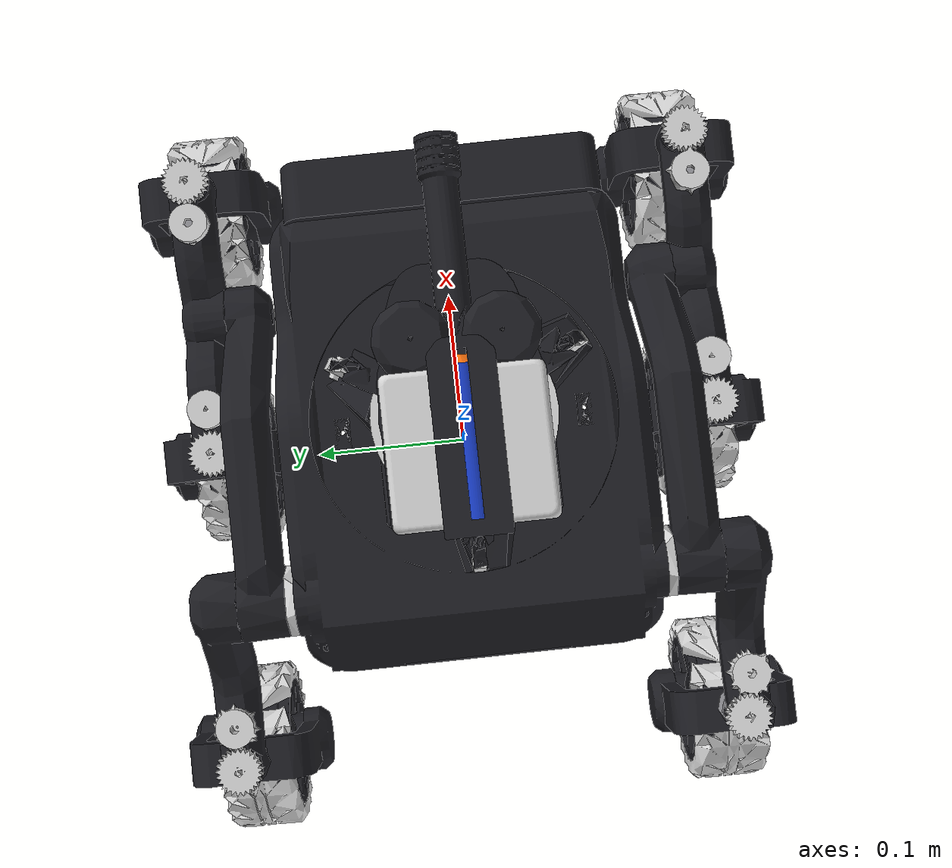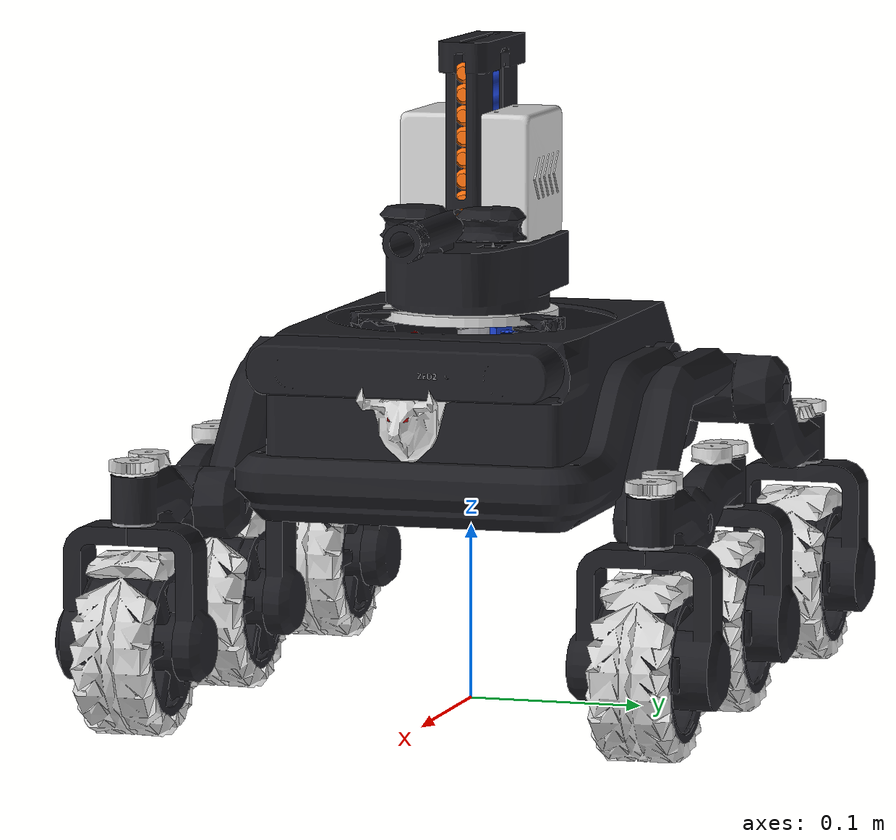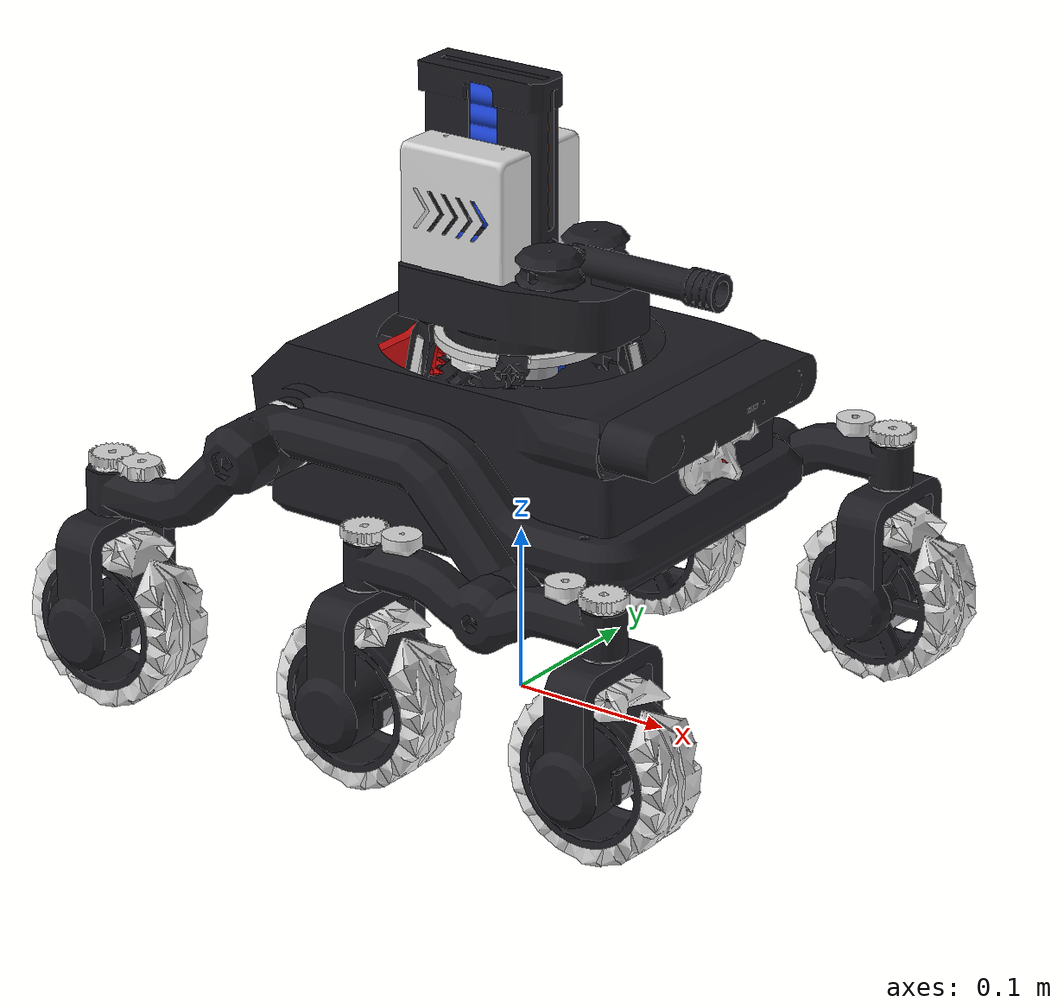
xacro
<?xml version="1.0"?>
<robot name="defender" xmlns:xacro="http://www.ros.org/wiki/xacro">

  <xacro:include filename="defender_generated.xacro"/>

  <!-- Masses in kg. Guesses until you weigh the real parts - then fix them here. -->
  <xacro:property name="base_mass" value="1.20"/>
  <xacro:property name="rocker_mass" value="0.12"/>
  <xacro:property name="bogie_mass" value="0.08"/>
  <xacro:property name="steer_mass" value="0.06"/>
  <xacro:property name="wheel_mass" value="0.05"/>
  <xacro:property name="servo_arm_mass" value="0.01"/>
  <xacro:property name="platform_mass" value="0.08"/>
  <xacro:property name="turret_mass" value="0.30"/>
  <xacro:property name="flywheel_mass" value="0.015"/>
  <xacro:property name="camera_mass" value="0.166"/>  <!-- ZED 2 datasheet -->

  <xacro:property name="wheel_radius" value="0.0517"/>
  <xacro:property name="wheel_width" value="0.045"/>

  <!-- A link whose look and inertia come from the generated file. -->
  <xacro:macro name="cad_link" params="name mass">
    <link name="${name}">
      <xacro:call macro="visuals_${name}"/>
      <xacro:call macro="inertia_${name}" mass="${mass}"/>
    </link>
  </xacro:macro>

  <!-- Chassis                                                        -->
  <link name="base_footprint"/>

  <joint name="base_footprint_joint" type="fixed">
    <parent link="base_footprint"/>
    <child link="base_link"/>
    <origin xyz="0 0 ${-base_footprint_z}" rpy="0 0 0"/>
  </joint>

  <link name="base_link">
    <xacro:visuals_base_link/>
    <xacro:inertia_base_link mass="${base_mass}"/>
    <collision>
      <origin xyz="0 0 -0.013"/>
      <geometry><box size="0.27 0.19 0.10"/></geometry>
    </collision>
  </link>

  <!-- Rocker-bogie suspension, one side at a time                    -->
  <xacro:macro name="wheel_pod" params="pod side carrier steer_xyz wheel_xyz">
    <xacro:cad_link name="${pod}_${side}_steer" mass="${steer_mass}"/>
    <joint name="${pod}_${side}_steer_joint" type="revolute">
      <parent link="${carrier}"/>
      <child link="${pod}_${side}_steer"/>
      <origin xyz="${steer_xyz}"/>
      <axis xyz="0 0 1"/>
      <limit lower="${-pi/2}" upper="${pi/2}" effort="1.0" velocity="3.0"/>
    </joint>

    <link name="${pod}_${side}_wheel">
      <xacro:call macro="visuals_${pod}_${side}_wheel"/>
      <xacro:call macro="inertia_${pod}_${side}_wheel" mass="${wheel_mass}"/>
      <collision>
        <origin rpy="${pi/2} 0 0"/>
        <geometry><cylinder radius="${wheel_radius}" length="${wheel_width}"/></geometry>
      </collision>
    </link>
    <joint name="${pod}_${side}_wheel_joint" type="continuous">
      <parent link="${pod}_${side}_steer"/>
      <child link="${pod}_${side}_wheel"/>
      <origin xyz="${wheel_xyz}"/>
      <axis xyz="0 1 0"/>
      <limit effort="1.0" velocity="20.0"/>
    </joint>
  </xacro:macro>

  <!-- The *_xyz parameters are the measured positions from defender_generated.xacro. -->
  <xacro:macro name="suspension_side"
               params="side rocker_xyz bogie_xyz front_steer_xyz front_wheel_xyz
                       middle_steer_xyz middle_wheel_xyz rear_steer_xyz rear_wheel_xyz">
    <xacro:cad_link name="${side}_rocker" mass="${rocker_mass}"/>
    <joint name="${side}_rocker_joint" type="revolute">
      <parent link="base_link"/>
      <child link="${side}_rocker"/>
      <origin xyz="${rocker_xyz}"/>
      <axis xyz="0 1 0"/>
      <limit lower="-0.5" upper="0.5" effort="10.0" velocity="2.0"/>
      <!-- The differential forces the right rocker to do the opposite of the left. -->
      <xacro:if value="${side == 'right'}">
        <mimic joint="left_rocker_joint" multiplier="-1"/>
      </xacro:if>
    </joint>

    <xacro:cad_link name="${side}_bogie" mass="${bogie_mass}"/>
    <joint name="${side}_bogie_joint" type="revolute">
      <parent link="${side}_rocker"/>
      <child link="${side}_bogie"/>
      <origin xyz="${bogie_xyz}"/>
      <axis xyz="0 1 0"/>
      <limit lower="-0.6" upper="0.6" effort="10.0" velocity="2.0"/>
    </joint>

    <!-- Front and middle wheels hang from the bogie, the rear one from the rocker. -->
    <xacro:wheel_pod pod="front" side="${side}" carrier="${side}_bogie"
                     steer_xyz="${front_steer_xyz}" wheel_xyz="${front_wheel_xyz}"/>
    <xacro:wheel_pod pod="middle" side="${side}" carrier="${side}_bogie"
                     steer_xyz="${middle_steer_xyz}" wheel_xyz="${middle_wheel_xyz}"/>
    <xacro:wheel_pod pod="rear" side="${side}" carrier="${side}_rocker"
                     steer_xyz="${rear_steer_xyz}" wheel_xyz="${rear_wheel_xyz}"/>
  </xacro:macro>

  <xacro:suspension_side side="left"
      rocker_xyz="${left_rocker_origin}" bogie_xyz="${left_bogie_origin}"
      front_steer_xyz="${front_left_steer_origin}" front_wheel_xyz="${front_left_wheel_origin}"
      middle_steer_xyz="${middle_left_steer_origin}" middle_wheel_xyz="${middle_left_wheel_origin}"
      rear_steer_xyz="${rear_left_steer_origin}" rear_wheel_xyz="${rear_left_wheel_origin}"/>
  <xacro:suspension_side side="right"
      rocker_xyz="${right_rocker_origin}" bogie_xyz="${right_bogie_origin}"
      front_steer_xyz="${front_right_steer_origin}" front_wheel_xyz="${front_right_wheel_origin}"
      middle_steer_xyz="${middle_right_steer_origin}" middle_wheel_xyz="${middle_right_wheel_origin}"
      rear_steer_xyz="${rear_right_steer_origin}" rear_wheel_xyz="${rear_right_wheel_origin}"/>

  <xacro:cad_link name="differential" mass="0.02"/>
  <joint name="differential_joint" type="revolute">
    <parent link="base_link"/>
    <child link="differential"/>
    <origin xyz="${differential_origin}"/>
    <axis xyz="1 0 0"/>
    <limit lower="-0.2" upper="0.2" effort="10.0" velocity="2.0"/>
    <mimic joint="left_rocker_joint" multiplier="${differential_ratio}"/>
  </joint>

  <!-- Self-levelling platform                                        -->
  <!-- The real platform is a closed loop: 3 servos push 3 rods that  -->
  <!-- hold the plate. URDF can only describe trees, so the plate     -->
  <!-- gets two "virtual" joints (roll, pitch) and the servo arms are -->
  <!-- separate joints. Working out servo angles from roll and pitch  -->
  <!-- is inverse kinematics - that is a later lesson.                -->
  <xacro:macro name="platform_servo" params="where xyz axis">
    <xacro:cad_link name="platform_servo_${where}" mass="${servo_arm_mass}"/>
    <joint name="platform_servo_${where}_joint" type="revolute">
      <parent link="base_link"/>
      <child link="platform_servo_${where}"/>
      <origin xyz="${xyz}"/>
      <axis xyz="${axis}"/>
      <limit lower="${-pi/2}" upper="${pi/2}" effort="0.2" velocity="6.0"/>
    </joint>
  </xacro:macro>

  <xacro:platform_servo where="front_left"
      xyz="${platform_servo_front_left_origin}" axis="${platform_servo_front_left_axis}"/>
  <xacro:platform_servo where="front_right"
      xyz="${platform_servo_front_right_origin}" axis="${platform_servo_front_right_axis}"/>
  <xacro:platform_servo where="rear"
      xyz="${platform_servo_rear_origin}" axis="${platform_servo_rear_axis}"/>

  <link name="platform_roll">
    <inertial>
      <mass value="0.001"/>
      <inertia ixx="1e-7" ixy="0" ixz="0" iyy="1e-7" iyz="0" izz="1e-7"/>
    </inertial>
  </link>
  <joint name="platform_roll_joint" type="revolute">
    <parent link="base_link"/>
    <child link="platform_roll"/>
    <origin xyz="${platform_roll_origin}"/>
    <axis xyz="1 0 0"/>
    <limit lower="-0.26" upper="0.26" effort="2.0" velocity="3.0"/>
  </joint>

  <xacro:cad_link name="platform" mass="${platform_mass}"/>
  <joint name="platform_pitch_joint" type="revolute">
    <parent link="platform_roll"/>
    <child link="platform"/>
    <origin xyz="${platform_origin}"/>
    <axis xyz="0 1 0"/>
    <limit lower="-0.26" upper="0.26" effort="2.0" velocity="3.0"/>
  </joint>

  <!-- Turret and shooter                                             -->
  <link name="turret">
    <xacro:visuals_turret/>
    <xacro:inertia_turret mass="${turret_mass}"/>
    <collision>
      <origin xyz="0.0 0.0 0.075"/>
      <geometry><box size="0.13 0.085 0.15"/></geometry>
    </collision>
  </link>
  <joint name="turret_yaw_joint" type="revolute">
    <parent link="platform"/>
    <child link="turret"/>
    <origin xyz="${turret_origin}"/>
    <axis xyz="0 0 1"/>
    <!-- A 28BYJ-48 stepper. Not continuous: the wires would wind up. -->
    <limit lower="${-pi}" upper="${pi}" effort="0.03" velocity="1.5"/>
  </joint>

  <xacro:cad_link name="flywheel_left" mass="${flywheel_mass}"/>
  <joint name="flywheel_left_joint" type="continuous">
    <parent link="turret"/>
    <child link="flywheel_left"/>
    <origin xyz="${flywheel_left_origin}"/>
    <axis xyz="0 0 1"/>
    <limit effort="0.05" velocity="1500.0"/>
  </joint>

  <xacro:cad_link name="flywheel_right" mass="${flywheel_mass}"/>
  <joint name="flywheel_right_joint" type="continuous">
    <parent link="turret"/>
    <child link="flywheel_right"/>
    <origin xyz="${flywheel_right_origin}"/>
    <axis xyz="0 0 1"/>
    <limit effort="0.05" velocity="1500.0"/>
    <!-- The two wheels pinch the dart, so they spin in opposite directions. -->
    <mimic joint="flywheel_left_joint" multiplier="-1"/>
  </joint>

  <!-- Where the dart leaves the barrel, pointing the way it flies (+x). -->
  <link name="muzzle"/>
  <joint name="muzzle_joint" type="fixed">
    <parent link="turret"/>
    <child link="muzzle"/>
    <origin xyz="${muzzle_origin}"/>
  </joint>

  <!-- ZED 2 stereo camera                                            -->
  <xacro:cad_link name="zed2_camera" mass="${camera_mass}"/>
  <joint name="zed2_camera_joint" type="fixed">
    <parent link="base_link"/>
    <child link="zed2_camera"/>
    <origin xyz="${zed2_camera_origin}"/>
  </joint>

  <!-- Image frames use a different convention: z forward, x right, y down. -->
  <link name="zed2_camera_optical"/>
  <joint name="zed2_camera_optical_joint" type="fixed">
    <parent link="zed2_camera"/>
    <child link="zed2_camera_optical"/>
    <origin rpy="${-pi/2} 0 ${-pi/2}"/>
  </joint>

</robot>

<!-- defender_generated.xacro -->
<robot xmlns:xacro="http://www.ros.org/wiki/xacro">

  <material name="dark"><color rgba="0.12 0.12 0.14 1.0"/></material>
  <material name="white"><color rgba="0.85 0.85 0.85 1.0"/></material>
  <material name="red"><color rgba="0.80 0.05 0.05 1.0"/></material>
  <material name="blue"><color rgba="0.10 0.25 0.80 1.0"/></material>
  <material name="orange"><color rgba="1.00 0.45 0.05 1.0"/></material>
  <material name="metal"><color rgba="0.60 0.60 0.62 1.0"/></material>

  <xacro:property name="left_rocker_origin" value="-0.08995 0.09344 0.00000"/>
  <xacro:property name="left_bogie_origin" value="0.17000 0.05375 -0.05300"/>
  <xacro:property name="front_left_steer_origin" value="0.08002 0.00047 0.02812"/>
  <xacro:property name="front_left_wheel_origin" value="-0.00009 -0.00092 -0.09615"/>
  <xacro:property name="middle_left_steer_origin" value="-0.08098 0.00047 0.02802"/>
  <xacro:property name="middle_left_wheel_origin" value="-0.00009 -0.00092 -0.09602"/>
  <xacro:property name="rear_left_steer_origin" value="-0.09501 0.05598 -0.02490"/>
  <xacro:property name="rear_left_wheel_origin" value="-0.00006 -0.00092 -0.09611"/>
  <xacro:property name="right_rocker_origin" value="-0.08995 -0.09344 0.00000"/>
  <xacro:property name="right_bogie_origin" value="0.17000 -0.05375 -0.05300"/>
  <xacro:property name="front_right_steer_origin" value="0.08002 -0.00047 0.02812"/>
  <xacro:property name="front_right_wheel_origin" value="-0.00009 0.00092 -0.09615"/>
  <xacro:property name="middle_right_steer_origin" value="-0.08098 -0.00047 0.02802"/>
  <xacro:property name="middle_right_wheel_origin" value="-0.00009 0.00092 -0.09602"/>
  <xacro:property name="rear_right_steer_origin" value="-0.09501 -0.05247 -0.02490"/>
  <xacro:property name="rear_right_wheel_origin" value="-0.00006 0.00092 -0.09611"/>
  <xacro:property name="differential_origin" value="-0.11072 -0.00000 0.00000"/>
  <xacro:property name="platform_roll_origin" value="0.00000 -0.00022 0.04872"/>
  <xacro:property name="platform_origin" value="0.00000 0.00000 0.00000"/>
  <xacro:property name="turret_origin" value="0.00000 0.00000 0.00408"/>
  <xacro:property name="flywheel_left_origin" value="0.03558 0.02248 0.05184"/>
  <xacro:property name="flywheel_right_origin" value="0.03558 -0.02248 0.05184"/>
  <xacro:property name="muzzle_origin" value="0.13575 0.00000 0.04971"/>
  <xacro:property name="platform_servo_front_left_origin" value="0.03232 0.02744 -0.01472"/>
  <xacro:property name="platform_servo_rear_origin" value="-0.04016 0.01372 -0.01472"/>
  <xacro:property name="platform_servo_front_right_origin" value="0.00795 -0.04219 -0.01472"/>
  <xacro:property name="zed2_camera_origin" value="0.14674 -0.00087 0.03303"/>
  <xacro:property name="base_footprint_z" value="-0.17202"/>
  <xacro:property name="platform_servo_front_left_axis" value="0.86603 -0.50000 0.00000"/>
  <xacro:property name="platform_servo_rear_axis" value="0.00000 1.00000 0.00000"/>
  <xacro:property name="platform_servo_front_right_axis" value="-0.86603 -0.50000 0.00000"/>
  <xacro:property name="differential_ratio" value="0.2559"/>

  <xacro:macro name="inertia_base_link" params="mass">
    <inertial>
      <origin xyz="0.00804 -0.00000 -0.00407"/>
      <mass value="${mass}"/>
      <inertia ixx="${mass * 4.4446e-03}" ixy="0" ixz="0"
               iyy="${mass * 7.7299e-03}" iyz="0"
               izz="${mass * 1.0418e-02}"/>
    </inertial>
  </xacro:macro>
  <xacro:macro name="inertia_differential" params="mass">
    <inertial>
      <origin xyz="-0.00000 0.00000 0.00000"/>
      <mass value="${mass}"/>
      <inertia ixx="${mass * 2.1168e-03}" ixy="0" ixz="0"
               iyy="${mass * 1.9297e-04}" iyz="0"
               izz="${mass * 1.9416e-03}"/>
    </inertial>
  </xacro:macro>
  <xacro:macro name="inertia_flywheel_left" params="mass">
    <inertial>
      <origin xyz="-0.00011 0.00009 0.00000"/>
      <mass value="${mass}"/>
      <inertia ixx="${mass * 1.5419e-04}" ixy="0" ixz="0"
               iyy="${mass * 1.5439e-04}" iyz="0"
               izz="${mass * 2.6038e-04}"/>
    </inertial>
  </xacro:macro>
  <xacro:macro name="inertia_flywheel_right" params="mass">
    <inertial>
      <origin xyz="0.00005 0.00007 0.00000"/>
      <mass value="${mass}"/>
      <inertia ixx="${mass * 1.5452e-04}" ixy="0" ixz="0"
               iyy="${mass * 1.5564e-04}" iyz="0"
               izz="${mass * 2.6196e-04}"/>
    </inertial>
  </xacro:macro>
  <xacro:macro name="inertia_front_left_steer" params="mass">
    <inertial>
      <origin xyz="-0.00026 -0.00090 -0.05618"/>
      <mass value="${mass}"/>
      <inertia ixx="${mass * 1.8776e-03}" ixy="0" ixz="0"
               iyy="${mass * 1.4988e-03}" iyz="0"
               izz="${mass * 8.0672e-04}"/>
    </inertial>
  </xacro:macro>
  <xacro:macro name="inertia_front_left_wheel" params="mass">
    <inertial>
      <origin xyz="-0.00000 -0.00871 -0.00000"/>
      <mass value="${mass}"/>
      <inertia ixx="${mass * 1.2122e-03}" ixy="0" ixz="0"
               iyy="${mass * 1.7485e-03}" iyz="0"
               izz="${mass * 1.2035e-03}"/>
    </inertial>
  </xacro:macro>
  <xacro:macro name="inertia_front_right_steer" params="mass">
    <inertial>
      <origin xyz="-0.00003 0.00090 -0.05612"/>
      <mass value="${mass}"/>
      <inertia ixx="${mass * 1.8749e-03}" ixy="0" ixz="0"
               iyy="${mass * 1.4933e-03}" iyz="0"
               izz="${mass * 8.0401e-04}"/>
    </inertial>
  </xacro:macro>
  <xacro:macro name="inertia_front_right_wheel" params="mass">
    <inertial>
      <origin xyz="-0.00000 0.00871 -0.00019"/>
      <mass value="${mass}"/>
      <inertia ixx="${mass * 1.2056e-03}" ixy="0" ixz="0"
               iyy="${mass * 1.7420e-03}" iyz="0"
               izz="${mass * 1.2035e-03}"/>
    </inertial>
  </xacro:macro>
  <xacro:macro name="inertia_left_bogie" params="mass">
    <inertial>
      <origin xyz="-0.00004 0.00003 0.00763"/>
      <mass value="${mass}"/>
      <inertia ixx="${mass * 3.1692e-04}" ixy="0" ixz="0"
               iyy="${mass * 3.1440e-03}" iyz="0"
               izz="${mass * 2.9491e-03}"/>
    </inertial>
  </xacro:macro>
  <xacro:macro name="inertia_left_rocker" params="mass">
    <inertial>
      <origin xyz="0.04124 0.02067 -0.02393"/>
      <mass value="${mass}"/>
      <inertia ixx="${mass * 1.6109e-03}" ixy="0" ixz="0"
               iyy="${mass * 8.2315e-03}" iyz="0"
               izz="${mass * 8.2206e-03}"/>
    </inertial>
  </xacro:macro>
  <xacro:macro name="inertia_middle_left_steer" params="mass">
    <inertial>
      <origin xyz="-0.00013 -0.00090 -0.05614"/>
      <mass value="${mass}"/>
      <inertia ixx="${mass * 1.8758e-03}" ixy="0" ixz="0"
               iyy="${mass * 1.4961e-03}" iyz="0"
               izz="${mass * 8.0595e-04}"/>
    </inertial>
  </xacro:macro>
  <xacro:macro name="inertia_middle_left_wheel" params="mass">
    <inertial>
      <origin xyz="-0.00000 -0.00871 -0.00000"/>
      <mass value="${mass}"/>
      <inertia ixx="${mass * 1.2122e-03}" ixy="0" ixz="0"
               iyy="${mass * 1.7485e-03}" iyz="0"
               izz="${mass * 1.2035e-03}"/>
    </inertial>
  </xacro:macro>
  <xacro:macro name="inertia_middle_right_steer" params="mass">
    <inertial>
      <origin xyz="-0.00016 0.00090 -0.05610"/>
      <mass value="${mass}"/>
      <inertia ixx="${mass * 1.8739e-03}" ixy="0" ixz="0"
               iyy="${mass * 1.4932e-03}" iyz="0"
               izz="${mass * 8.0481e-04}"/>
    </inertial>
  </xacro:macro>
  <xacro:macro name="inertia_middle_right_wheel" params="mass">
    <inertial>
      <origin xyz="-0.00000 0.00871 0.00000"/>
      <mass value="${mass}"/>
      <inertia ixx="${mass * 1.2123e-03}" ixy="0" ixz="0"
               iyy="${mass * 1.7488e-03}" iyz="0"
               izz="${mass * 1.2036e-03}"/>
    </inertial>
  </xacro:macro>
  <xacro:macro name="inertia_platform" params="mass">
    <inertial>
      <origin xyz="-0.01032 -0.00049 -0.00461"/>
      <mass value="${mass}"/>
      <inertia ixx="${mass * 1.4582e-03}" ixy="0" ixz="0"
               iyy="${mass * 1.3483e-03}" iyz="0"
               izz="${mass * 2.5535e-03}"/>
    </inertial>
  </xacro:macro>
  <xacro:macro name="inertia_platform_servo_front_left" params="mass">
    <inertial>
      <origin xyz="-0.01204 0.01966 0.02454"/>
      <mass value="${mass}"/>
      <inertia ixx="${mass * 6.9138e-04}" ixy="0" ixz="0"
               iyy="${mass * 6.3610e-04}" iyz="0"
               izz="${mass * 5.3907e-04}"/>
    </inertial>
  </xacro:macro>
  <xacro:macro name="inertia_platform_servo_front_right" params="mass">
    <inertial>
      <origin xyz="-0.02758 0.00720 0.02379"/>
      <mass value="${mass}"/>
      <inertia ixx="${mass * 1.0376e-03}" ixy="0" ixz="0"
               iyy="${mass * 1.9158e-03}" iyz="0"
               izz="${mass * 2.1367e-03}"/>
    </inertial>
  </xacro:macro>
  <xacro:macro name="inertia_platform_servo_rear" params="mass">
    <inertial>
      <origin xyz="0.02543 -0.04220 0.02404"/>
      <mass value="${mass}"/>
      <inertia ixx="${mass * 1.0849e-03}" ixy="0" ixz="0"
               iyy="${mass * 2.1528e-03}" iyz="0"
               izz="${mass * 2.4328e-03}"/>
    </inertial>
  </xacro:macro>
  <xacro:macro name="inertia_rear_left_steer" params="mass">
    <inertial>
      <origin xyz="-0.00007 -0.00090 -0.05618"/>
      <mass value="${mass}"/>
      <inertia ixx="${mass * 1.8774e-03}" ixy="0" ixz="0"
               iyy="${mass * 1.4974e-03}" iyz="0"
               izz="${mass * 8.0554e-04}"/>
    </inertial>
  </xacro:macro>
  <xacro:macro name="inertia_rear_left_wheel" params="mass">
    <inertial>
      <origin xyz="0.00000 -0.00871 0.00000"/>
      <mass value="${mass}"/>
      <inertia ixx="${mass * 1.2123e-03}" ixy="0" ixz="0"
               iyy="${mass * 1.7488e-03}" iyz="0"
               izz="${mass * 1.2036e-03}"/>
    </inertial>
  </xacro:macro>
  <xacro:macro name="inertia_rear_right_steer" params="mass">
    <inertial>
      <origin xyz="-0.00001 0.00090 -0.05608"/>
      <mass value="${mass}"/>
      <inertia ixx="${mass * 1.8731e-03}" ixy="0" ixz="0"
               iyy="${mass * 1.4934e-03}" iyz="0"
               izz="${mass * 8.0589e-04}"/>
    </inertial>
  </xacro:macro>
  <xacro:macro name="inertia_rear_right_wheel" params="mass">
    <inertial>
      <origin xyz="-0.00000 0.00871 -0.00019"/>
      <mass value="${mass}"/>
      <inertia ixx="${mass * 1.2056e-03}" ixy="0" ixz="0"
               iyy="${mass * 1.7420e-03}" iyz="0"
               izz="${mass * 1.2035e-03}"/>
    </inertial>
  </xacro:macro>
  <xacro:macro name="inertia_right_bogie" params="mass">
    <inertial>
      <origin xyz="-0.00003 -0.00001 0.00764"/>
      <mass value="${mass}"/>
      <inertia ixx="${mass * 3.1671e-04}" ixy="0" ixz="0"
               iyy="${mass * 3.1447e-03}" iyz="0"
               izz="${mass * 2.9496e-03}"/>
    </inertial>
  </xacro:macro>
  <xacro:macro name="inertia_right_rocker" params="mass">
    <inertial>
      <origin xyz="0.04096 -0.02081 -0.02376"/>
      <mass value="${mass}"/>
      <inertia ixx="${mass * 1.6103e-03}" ixy="0" ixz="0"
               iyy="${mass * 8.2436e-03}" iyz="0"
               izz="${mass * 8.2426e-03}"/>
    </inertial>
  </xacro:macro>
  <xacro:macro name="inertia_turret" params="mass">
    <inertial>
      <origin xyz="0.03680 0.00002 0.07185"/>
      <mass value="${mass}"/>
      <inertia ixx="${mass * 2.8258e-03}" ixy="0" ixz="0"
               iyy="${mass * 5.4160e-03}" iyz="0"
               izz="${mass * 3.9366e-03}"/>
    </inertial>
  </xacro:macro>
  <xacro:macro name="inertia_zed2_camera" params="mass">
    <inertial>
      <origin xyz="-0.02120 -0.00000 0.00001"/>
      <mass value="${mass}"/>
      <inertia ixx="${mass * 2.6175e-03}" ixy="0" ixz="0"
               iyy="${mass * 2.2336e-04}" iyz="0"
               izz="${mass * 2.6936e-03}"/>
    </inertial>
  </xacro:macro>

  <xacro:macro name="visuals_base_link">
    <visual>
      <geometry><mesh filename="package://defender_description/meshes/base_link__blue.stl"/></geometry>
      <material name="blue"/>
    </visual>
    <visual>
      <geometry><mesh filename="package://defender_description/meshes/base_link__dark.stl"/></geometry>
      <material name="dark"/>
    </visual>
    <visual>
      <geometry><mesh filename="package://defender_description/meshes/base_link__metal.stl"/></geometry>
      <material name="metal"/>
    </visual>
    <visual>
      <geometry><mesh filename="package://defender_description/meshes/base_link__red.stl"/></geometry>
      <material name="red"/>
    </visual>
    <visual>
      <geometry><mesh filename="package://defender_description/meshes/base_link__white.stl"/></geometry>
      <material name="white"/>
    </visual>
  </xacro:macro>
  <xacro:macro name="visuals_differential">
    <visual>
      <geometry><mesh filename="package://defender_description/meshes/differential__red.stl"/></geometry>
      <material name="red"/>
    </visual>
  </xacro:macro>
  <xacro:macro name="visuals_flywheel_left">
    <visual>
      <geometry><mesh filename="package://defender_description/meshes/flywheel_left__dark.stl"/></geometry>
      <material name="dark"/>
    </visual>
  </xacro:macro>
  <xacro:macro name="visuals_flywheel_right">
    <visual>
      <geometry><mesh filename="package://defender_description/meshes/flywheel_right__dark.stl"/></geometry>
      <material name="dark"/>
    </visual>
  </xacro:macro>
  <xacro:macro name="visuals_front_left_steer">
    <visual>
      <geometry><mesh filename="package://defender_description/meshes/front_left_steer__dark.stl"/></geometry>
      <material name="dark"/>
    </visual>
    <visual>
      <geometry><mesh filename="package://defender_description/meshes/front_left_steer__metal.stl"/></geometry>
      <material name="metal"/>
    </visual>
    <visual>
      <geometry><mesh filename="package://defender_description/meshes/front_left_steer__white.stl"/></geometry>
      <material name="white"/>
    </visual>
  </xacro:macro>
  <xacro:macro name="visuals_front_left_wheel">
    <visual>
      <geometry><mesh filename="package://defender_description/meshes/front_left_wheel__dark.stl"/></geometry>
      <material name="dark"/>
    </visual>
    <visual>
      <geometry><mesh filename="package://defender_description/meshes/front_left_wheel__white.stl"/></geometry>
      <material name="white"/>
    </visual>
  </xacro:macro>
  <xacro:macro name="visuals_front_right_steer">
    <visual>
      <geometry><mesh filename="package://defender_description/meshes/front_right_steer__dark.stl"/></geometry>
      <material name="dark"/>
    </visual>
    <visual>
      <geometry><mesh filename="package://defender_description/meshes/front_right_steer__metal.stl"/></geometry>
      <material name="metal"/>
    </visual>
    <visual>
      <geometry><mesh filename="package://defender_description/meshes/front_right_steer__white.stl"/></geometry>
      <material name="white"/>
    </visual>
  </xacro:macro>
  <xacro:macro name="visuals_front_right_wheel">
    <visual>
      <geometry><mesh filename="package://defender_description/meshes/front_right_wheel__dark.stl"/></geometry>
      <material name="dark"/>
    </visual>
    <visual>
      <geometry><mesh filename="package://defender_description/meshes/front_right_wheel__white.stl"/></geometry>
      <material name="white"/>
    </visual>
  </xacro:macro>
  <xacro:macro name="visuals_left_bogie">
    <visual>
      <geometry><mesh filename="package://defender_description/meshes/left_bogie__dark.stl"/></geometry>
      <material name="dark"/>
    </visual>
    <visual>
      <geometry><mesh filename="package://defender_description/meshes/left_bogie__metal.stl"/></geometry>
      <material name="metal"/>
    </visual>
    <visual>
      <geometry><mesh filename="package://defender_description/meshes/left_bogie__white.stl"/></geometry>
      <material name="white"/>
    </visual>
  </xacro:macro>
  <xacro:macro name="visuals_left_rocker">
    <visual>
      <geometry><mesh filename="package://defender_description/meshes/left_rocker__dark.stl"/></geometry>
      <material name="dark"/>
    </visual>
    <visual>
      <geometry><mesh filename="package://defender_description/meshes/left_rocker__metal.stl"/></geometry>
      <material name="metal"/>
    </visual>
    <visual>
      <geometry><mesh filename="package://defender_description/meshes/left_rocker__white.stl"/></geometry>
      <material name="white"/>
    </visual>
  </xacro:macro>
  <xacro:macro name="visuals_middle_left_steer">
    <visual>
      <geometry><mesh filename="package://defender_description/meshes/middle_left_steer__dark.stl"/></geometry>
      <material name="dark"/>
    </visual>
    <visual>
      <geometry><mesh filename="package://defender_description/meshes/middle_left_steer__metal.stl"/></geometry>
      <material name="metal"/>
    </visual>
    <visual>
      <geometry><mesh filename="package://defender_description/meshes/middle_left_steer__white.stl"/></geometry>
      <material name="white"/>
    </visual>
  </xacro:macro>
  <xacro:macro name="visuals_middle_left_wheel">
    <visual>
      <geometry><mesh filename="package://defender_description/meshes/middle_left_wheel__dark.stl"/></geometry>
      <material name="dark"/>
    </visual>
    <visual>
      <geometry><mesh filename="package://defender_description/meshes/middle_left_wheel__white.stl"/></geometry>
      <material name="white"/>
    </visual>
  </xacro:macro>
  <xacro:macro name="visuals_middle_right_steer">
    <visual>
      <geometry><mesh filename="package://defender_description/meshes/middle_right_steer__dark.stl"/></geometry>
      <material name="dark"/>
    </visual>
    <visual>
      <geometry><mesh filename="package://defender_description/meshes/middle_right_steer__metal.stl"/></geometry>
      <material name="metal"/>
    </visual>
    <visual>
      <geometry><mesh filename="package://defender_description/meshes/middle_right_steer__white.stl"/></geometry>
      <material name="white"/>
    </visual>
  </xacro:macro>
  <xacro:macro name="visuals_middle_right_wheel">
    <visual>
      <geometry><mesh filename="package://defender_description/meshes/middle_right_wheel__dark.stl"/></geometry>
      <material name="dark"/>
    </visual>
    <visual>
      <geometry><mesh filename="package://defender_description/meshes/middle_right_wheel__white.stl"/></geometry>
      <material name="white"/>
    </visual>
  </xacro:macro>
  <xacro:macro name="visuals_platform">
    <visual>
      <geometry><mesh filename="package://defender_description/meshes/platform__blue.stl"/></geometry>
      <material name="blue"/>
    </visual>
    <visual>
      <geometry><mesh filename="package://defender_description/meshes/platform__dark.stl"/></geometry>
      <material name="dark"/>
    </visual>
    <visual>
      <geometry><mesh filename="package://defender_description/meshes/platform__metal.stl"/></geometry>
      <material name="metal"/>
    </visual>
    <visual>
      <geometry><mesh filename="package://defender_description/meshes/platform__white.stl"/></geometry>
      <material name="white"/>
    </visual>
  </xacro:macro>
  <xacro:macro name="visuals_platform_servo_front_left">
    <visual>
      <geometry><mesh filename="package://defender_description/meshes/platform_servo_front_left__dark.stl"/></geometry>
      <material name="dark"/>
    </visual>
    <visual>
      <geometry><mesh filename="package://defender_description/meshes/platform_servo_front_left__white.stl"/></geometry>
      <material name="white"/>
    </visual>
  </xacro:macro>
  <xacro:macro name="visuals_platform_servo_front_right">
    <visual>
      <geometry><mesh filename="package://defender_description/meshes/platform_servo_front_right__dark.stl"/></geometry>
      <material name="dark"/>
    </visual>
    <visual>
      <geometry><mesh filename="package://defender_description/meshes/platform_servo_front_right__white.stl"/></geometry>
      <material name="white"/>
    </visual>
  </xacro:macro>
  <xacro:macro name="visuals_platform_servo_rear">
    <visual>
      <geometry><mesh filename="package://defender_description/meshes/platform_servo_rear__dark.stl"/></geometry>
      <material name="dark"/>
    </visual>
    <visual>
      <geometry><mesh filename="package://defender_description/meshes/platform_servo_rear__white.stl"/></geometry>
      <material name="white"/>
    </visual>
  </xacro:macro>
  <xacro:macro name="visuals_rear_left_steer">
    <visual>
      <geometry><mesh filename="package://defender_description/meshes/rear_left_steer__dark.stl"/></geometry>
      <material name="dark"/>
    </visual>
    <visual>
      <geometry><mesh filename="package://defender_description/meshes/rear_left_steer__metal.stl"/></geometry>
      <material name="metal"/>
    </visual>
    <visual>
      <geometry><mesh filename="package://defender_description/meshes/rear_left_steer__white.stl"/></geometry>
      <material name="white"/>
    </visual>
  </xacro:macro>
  <xacro:macro name="visuals_rear_left_wheel">
    <visual>
      <geometry><mesh filename="package://defender_description/meshes/rear_left_wheel__dark.stl"/></geometry>
      <material name="dark"/>
    </visual>
    <visual>
      <geometry><mesh filename="package://defender_description/meshes/rear_left_wheel__white.stl"/></geometry>
      <material name="white"/>
    </visual>
  </xacro:macro>
  <xacro:macro name="visuals_rear_right_steer">
    <visual>
      <geometry><mesh filename="package://defender_description/meshes/rear_right_steer__dark.stl"/></geometry>
      <material name="dark"/>
    </visual>
    <visual>
      <geometry><mesh filename="package://defender_description/meshes/rear_right_steer__metal.stl"/></geometry>
      <material name="metal"/>
    </visual>
    <visual>
      <geometry><mesh filename="package://defender_description/meshes/rear_right_steer__white.stl"/></geometry>
      <material name="white"/>
    </visual>
  </xacro:macro>
  <xacro:macro name="visuals_rear_right_wheel">
    <visual>
      <geometry><mesh filename="package://defender_description/meshes/rear_right_wheel__dark.stl"/></geometry>
      <material name="dark"/>
    </visual>
    <visual>
      <geometry><mesh filename="package://defender_description/meshes/rear_right_wheel__white.stl"/></geometry>
      <material name="white"/>
    </visual>
  </xacro:macro>
  <xacro:macro name="visuals_right_bogie">
    <visual>
      <geometry><mesh filename="package://defender_description/meshes/right_bogie__dark.stl"/></geometry>
      <material name="dark"/>
    </visual>
    <visual>
      <geometry><mesh filename="package://defender_description/meshes/right_bogie__metal.stl"/></geometry>
      <material name="metal"/>
    </visual>
    <visual>
      <geometry><mesh filename="package://defender_description/meshes/right_bogie__white.stl"/></geometry>
      <material name="white"/>
    </visual>
  </xacro:macro>
  <xacro:macro name="visuals_right_rocker">
    <visual>
      <geometry><mesh filename="package://defender_description/meshes/right_rocker__dark.stl"/></geometry>
      <material name="dark"/>
    </visual>
    <visual>
      <geometry><mesh filename="package://defender_description/meshes/right_rocker__metal.stl"/></geometry>
      <material name="metal"/>
    </visual>
    <visual>
      <geometry><mesh filename="package://defender_description/meshes/right_rocker__white.stl"/></geometry>
      <material name="white"/>
    </visual>
  </xacro:macro>
  <xacro:macro name="visuals_turret">
    <visual>
      <geometry><mesh filename="package://defender_description/meshes/turret__blue.stl"/></geometry>
      <material name="blue"/>
    </visual>
    <visual>
      <geometry><mesh filename="package://defender_description/meshes/turret__dark.stl"/></geometry>
      <material name="dark"/>
    </visual>
    <visual>
      <geometry><mesh filename="package://defender_description/meshes/turret__metal.stl"/></geometry>
      <material name="metal"/>
    </visual>
    <visual>
      <geometry><mesh filename="package://defender_description/meshes/turret__orange.stl"/></geometry>
      <material name="orange"/>
    </visual>
    <visual>
      <geometry><mesh filename="package://defender_description/meshes/turret__white.stl"/></geometry>
      <material name="white"/>
    </visual>
  </xacro:macro>
  <xacro:macro name="visuals_zed2_camera">
    <visual>
      <geometry><mesh filename="package://defender_description/meshes/zed2_camera__dark.stl"/></geometry>
      <material name="dark"/>
    </visual>
    <visual>
      <geometry><mesh filename="package://defender_description/meshes/zed2_camera__metal.stl"/></geometry>
      <material name="metal"/>
    </visual>
  </xacro:macro>
</robot>
